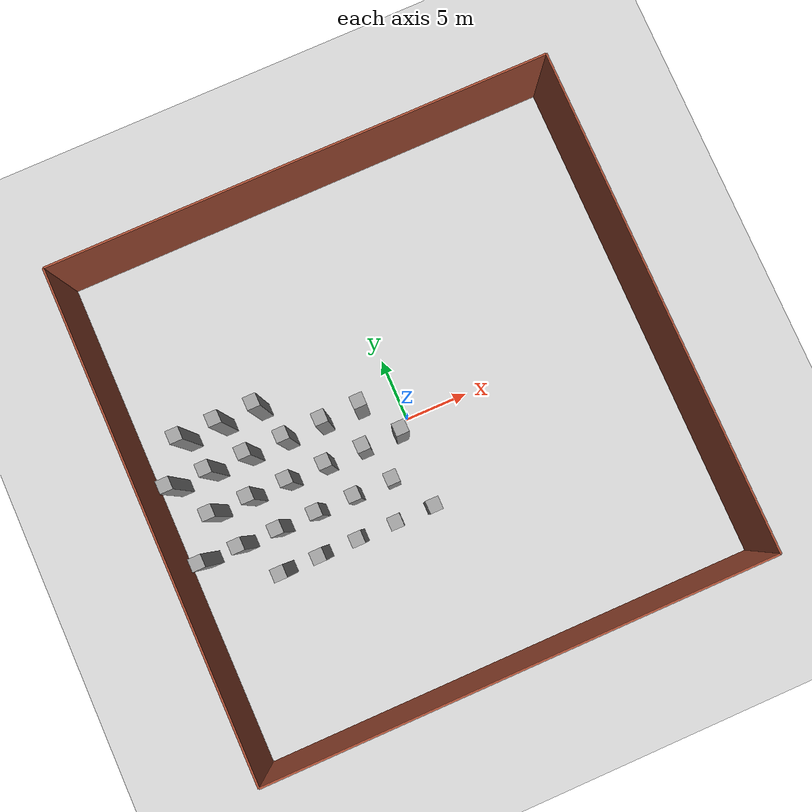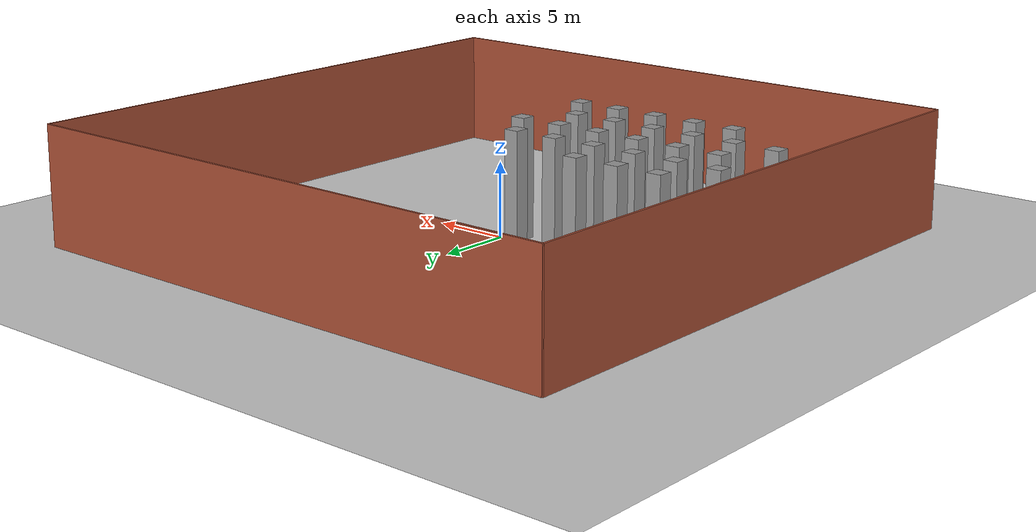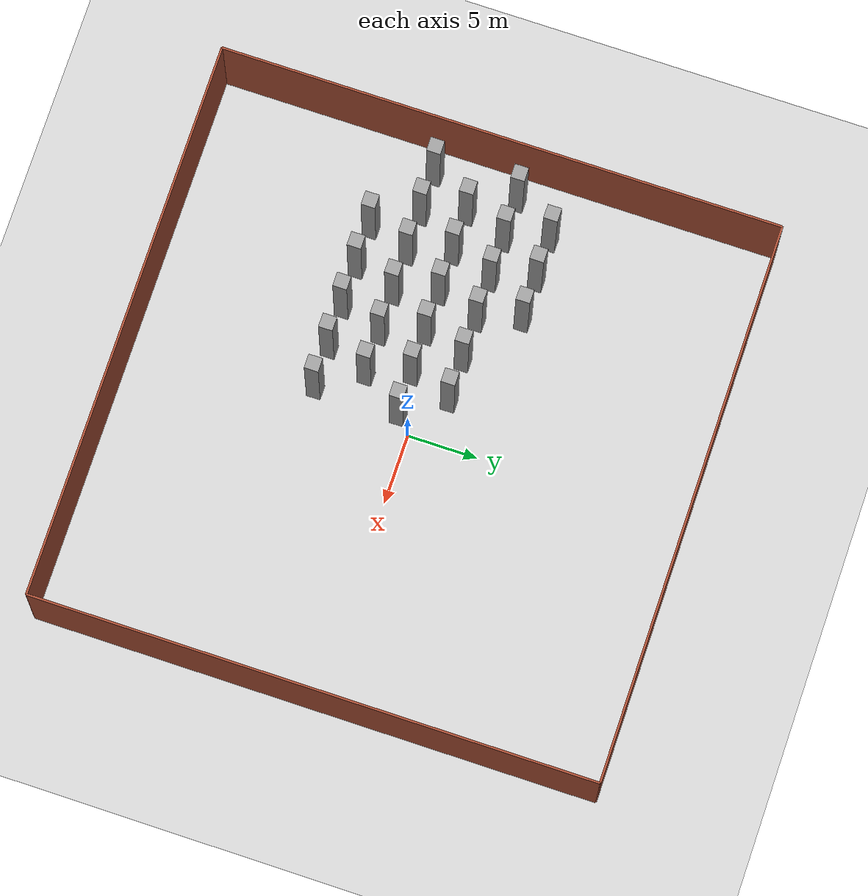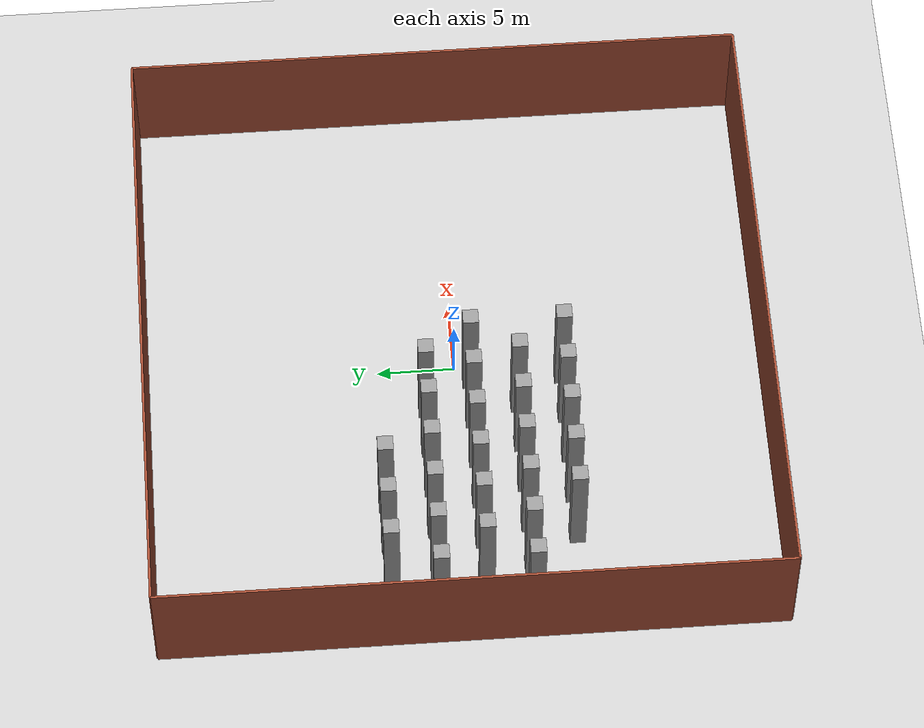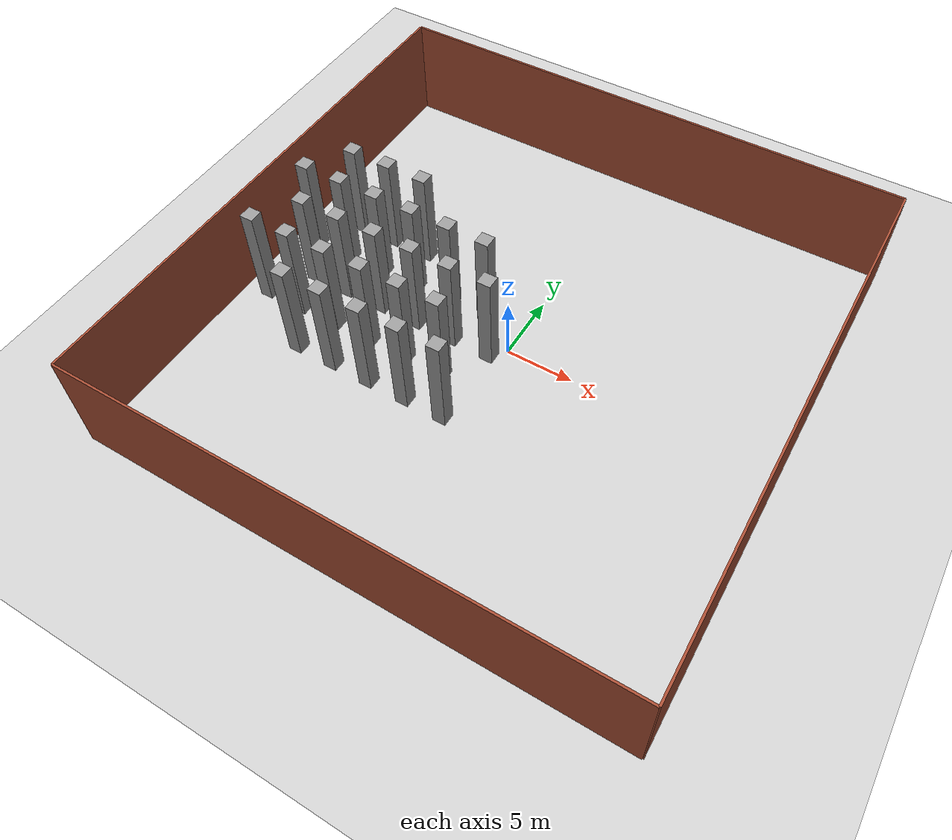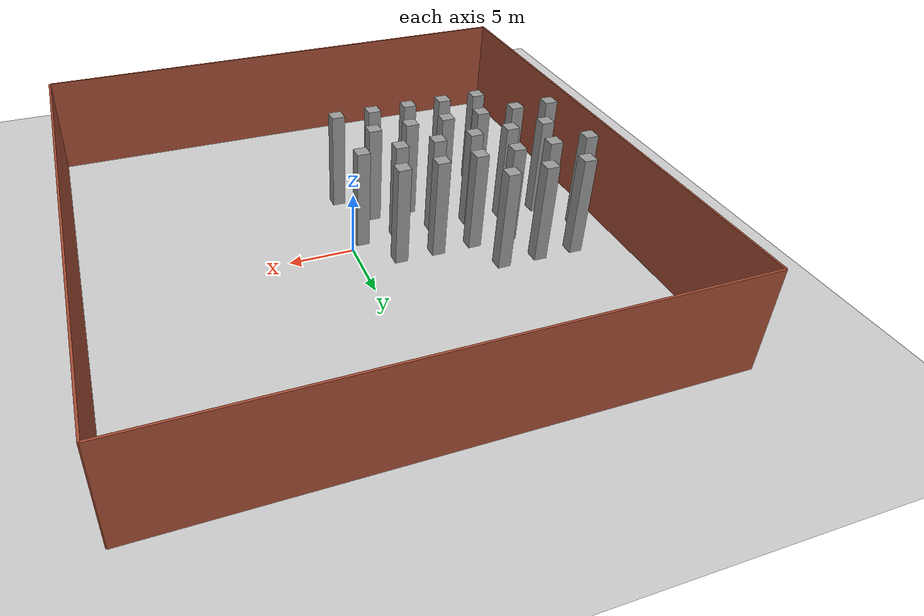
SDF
<sdf version="1.7">
 <world name="default">
  <model name="ground_plane">
   <static>1</static>
   <link name="link">
    <collision name="collision">
     <geometry><plane><normal>0 0 1</normal><size>100 100</size></plane></geometry>
     <surface>
      <contact><collide_bitmask>65535</collide_bitmask></contact>
      <friction><ode><mu>100</mu><mu2>50</mu2></ode></friction>
     </surface>
    </collision>
    <visual name="visual">
     <cast_shadows>0</cast_shadows>
     <geometry><plane><normal>0 0 1</normal><size>100 100</size></plane></geometry>
     <material>
      <script><uri>file://media/materials/scripts/gazebo.material</uri><name>Gazebo/Grey</name></script>
     </material>
    </visual>
   </link>
  </model>
  <model name="sim_room_square">
   <link name="Wall_14">
    <collision name="Wall_14_Collision">
     <geometry><box><size>40 0.15 8</size></box></geometry>
     <pose>0 0 4 0 -0 0</pose>
    </collision>
    <visual name="Wall_14_Visual">
     <pose>0 0 4 0 -0 0</pose>
     <geometry><box><size>40 0.15 8</size></box></geometry>
     <material>
      <script><uri>file://media/materials/scripts/gazebo.material</uri><name>Gazebo/Bricks</name></script>
      <ambient>1 1 1 1</ambient>
     </material>
     <meta><layer>0</layer></meta>
    </visual>
    <pose>20 -0 0 0 -0 -1.5708</pose>
   </link>
   <link name="Wall_15">
    <collision name="Wall_15_Collision">
     <geometry><box><size>40 0.15 8</size></box></geometry>
     <pose>0 0 4 0 -0 0</pose>
    </collision>
    <visual name="Wall_15_Visual">
     <pose>0 0 4 0 -0 0</pose>
     <geometry><box><size>40 0.15 8</size></box></geometry>
     <material>
      <script><uri>file://media/materials/scripts/gazebo.material</uri><name>Gazebo/Bricks</name></script>
      <ambient>1 1 1 1</ambient>
     </material>
     <meta><layer>0</layer></meta>
    </visual>
    <pose>0 -20 0 0 -0 3.14159</pose>
   </link>
   <link name="Wall_16">
    <collision name="Wall_16_Collision">
     <geometry><box><size>40 0.15 8</size></box></geometry>
     <pose>0 0 4 0 -0 0</pose>
    </collision>
    <visual name="Wall_16_Visual">
     <pose>0 0 4 0 -0 0</pose>
     <geometry><box><size>40 0.15 8</size></box></geometry>
     <material>
      <script><uri>file://media/materials/scripts/gazebo.material</uri><name>Gazebo/Bricks</name></script>
      <ambient>1 1 1 1</ambient>
     </material>
     <meta><layer>0</layer></meta>
    </visual>
    <pose>-20 -0 0 0 -0 1.5708</pose>
   </link>
   <link name="Wall_19">
    <collision name="Wall_19_Collision">
     <geometry><box><size>40 0.15 8</size></box></geometry>
     <pose>0 0 4 0 -0 0</pose>
    </collision>
    <visual name="Wall_19_Visual">
     <pose>0 0 4 0 -0 0</pose>
     <geometry><box><size>40 0.15 8</size></box></geometry>
     <material>
      <script><uri>file://media/materials/scripts/gazebo.material</uri><name>Gazebo/Bricks</name></script>
      <ambient>1 1 1 1</ambient>
     </material>
     <meta><layer>0</layer></meta>
    </visual>
    <pose>0 20 0 0 -0 0</pose>
   </link>
   <static>1</static>
  </model>
  <model name="unit_box_static52">
   <link name="link">
    <inertial>
     <mass>1</mass>
     <inertia>
      <ixx>0.166667</ixx>
      <ixy>0</ixy>
      <ixz>0</ixz>
      <iyy>0.166667</iyy>
      <iyz>0</iyz>
      <izz>0.166667</izz>
     </inertia>
    </inertial>
    <visual name="visual">
     <geometry><box><size>1 1 8</size></box></geometry>
     <material>
      <script><name>Gazebo/Grey</name><uri>file://media/materials/scripts/gazebo.material</uri></script>
      <shader type="pixel"/>
     </material>
    </visual>
    <collision name="collision">
     <geometry><box><size>1 1 8</size></box></geometry>
     <surface>
      <friction>
       <ode><mu>1</mu><mu2>1</mu2><fdir1>0 0 0</fdir1><slip1>0</slip1><slip2>0</slip2></ode>
       <torsional>
        <coefficient>1</coefficient>
        <patch_radius>0</patch_radius>
        <surface_radius>0</surface_radius>
        <use_patch_radius>1</use_patch_radius>
        <ode><slip>0</slip></ode>
       </torsional>
      </friction>
      <bounce><restitution_coefficient>0</restitution_coefficient><threshold>1e+06</threshold></bounce>
      <contact>
       <collide_without_contact>0</collide_without_contact>
       <collide_without_contact_bitmask>1</collide_without_contact_bitmask>
       <collide_bitmask>1</collide_bitmask>
       <ode>
        <soft_cfm>0</soft_cfm>
        <soft_erp>0.2</soft_erp>
        <kp>1e+13</kp>
        <kd>1</kd>
        <max_vel>0.01</max_vel>
        <min_depth>0</min_depth>
       </ode>
       <bullet>
        <split_impulse>1</split_impulse>
        <split_impulse_penetration_threshold>-0.01</split_impulse_penetration_threshold>
        <soft_cfm>0</soft_cfm>
        <soft_erp>0.2</soft_erp>
        <kp>1e+13</kp>
        <kd>1</kd>
       </bullet>
      </contact>
     </surface>
    </collision>
   </link>
   <static>1</static>
   <pose>-13 -7 4 0 -0 0</pose>
  </model>
  <model name="unit_box_static53">
   <link name="link">
    <inertial>
     <mass>1</mass>
     <inertia>
      <ixx>0.166667</ixx>
      <ixy>0</ixy>
      <ixz>0</ixz>
      <iyy>0.166667</iyy>
      <iyz>0</iyz>
      <izz>0.166667</izz>
     </inertia>
    </inertial>
    <visual name="visual">
     <geometry><box><size>1 1 8</size></box></geometry>
     <material>
      <script><name>Gazebo/Grey</name><uri>file://media/materials/scripts/gazebo.material</uri></script>
      <shader type="pixel"/>
     </material>
    </visual>
    <collision name="collision">
     <geometry><box><size>1 1 8</size></box></geometry>
     <surface>
      <friction>
       <ode><mu>1</mu><mu2>1</mu2><fdir1>0 0 0</fdir1><slip1>0</slip1><slip2>0</slip2></ode>
       <torsional>
        <coefficient>1</coefficient>
        <patch_radius>0</patch_radius>
        <surface_radius>0</surface_radius>
        <use_patch_radius>1</use_patch_radius>
        <ode><slip>0</slip></ode>
       </torsional>
      </friction>
      <bounce><restitution_coefficient>0</restitution_coefficient><threshold>1e+06</threshold></bounce>
      <contact>
       <collide_without_contact>0</collide_without_contact>
       <collide_without_contact_bitmask>1</collide_without_contact_bitmask>
       <collide_bitmask>1</collide_bitmask>
       <ode>
        <soft_cfm>0</soft_cfm>
        <soft_erp>0.2</soft_erp>
        <kp>1e+13</kp>
        <kd>1</kd>
        <max_vel>0.01</max_vel>
        <min_depth>0</min_depth>
       </ode>
       <bullet>
        <split_impulse>1</split_impulse>
        <split_impulse_penetration_threshold>-0.01</split_impulse_penetration_threshold>
        <soft_cfm>0</soft_cfm>
        <soft_erp>0.2</soft_erp>
        <kp>1e+13</kp>
        <kd>1</kd>
       </bullet>
      </contact>
     </surface>
    </collision>
   </link>
   <static>1</static>
   <pose>-10 -7 4 0 -0 0</pose>
  </model>
  <model name="unit_box_static54">
   <link name="link">
    <inertial>
     <mass>1</mass>
     <inertia>
      <ixx>0.166667</ixx>
      <ixy>0</ixy>
      <ixz>0</ixz>
      <iyy>0.166667</iyy>
      <iyz>0</iyz>
      <izz>0.166667</izz>
     </inertia>
    </inertial>
    <visual name="visual">
     <geometry><box><size>1 1 8</size></box></geometry>
     <material>
      <script><name>Gazebo/Grey</name><uri>file://media/materials/scripts/gazebo.material</uri></script>
      <shader type="pixel"/>
     </material>
    </visual>
    <collision name="collision">
     <geometry><box><size>1 1 8</size></box></geometry>
     <surface>
      <friction>
       <ode><mu>1</mu><mu2>1</mu2><fdir1>0 0 0</fdir1><slip1>0</slip1><slip2>0</slip2></ode>
       <torsional>
        <coefficient>1</coefficient>
        <patch_radius>0</patch_radius>
        <surface_radius>0</surface_radius>
        <use_patch_radius>1</use_patch_radius>
        <ode><slip>0</slip></ode>
       </torsional>
      </friction>
      <bounce><restitution_coefficient>0</restitution_coefficient><threshold>1e+06</threshold></bounce>
      <contact>
       <collide_without_contact>0</collide_without_contact>
       <collide_without_contact_bitmask>1</collide_without_contact_bitmask>
       <collide_bitmask>1</collide_bitmask>
       <ode>
        <soft_cfm>0</soft_cfm>
        <soft_erp>0.2</soft_erp>
        <kp>1e+13</kp>
        <kd>1</kd>
        <max_vel>0.01</max_vel>
        <min_depth>0</min_depth>
       </ode>
       <bullet>
        <split_impulse>1</split_impulse>
        <split_impulse_penetration_threshold>-0.01</split_impulse_penetration_threshold>
        <soft_cfm>0</soft_cfm>
        <soft_erp>0.2</soft_erp>
        <kp>1e+13</kp>
        <kd>1</kd>
       </bullet>
      </contact>
     </surface>
    </collision>
   </link>
   <static>1</static>
   <pose>-7 -7 4 0 -0 0</pose>
  </model>
  <model name="unit_box_static55">
   <link name="link">
    <inertial>
     <mass>1</mass>
     <inertia>
      <ixx>0.166667</ixx>
      <ixy>0</ixy>
      <ixz>0</ixz>
      <iyy>0.166667</iyy>
      <iyz>0</iyz>
      <izz>0.166667</izz>
     </inertia>
    </inertial>
    <visual name="visual">
     <geometry><box><size>1 1 8</size></box></geometry>
     <material>
      <script><name>Gazebo/Grey</name><uri>file://media/materials/scripts/gazebo.material</uri></script>
      <shader type="pixel"/>
     </material>
    </visual>
    <collision name="collision">
     <geometry><box><size>1 1 8</size></box></geometry>
     <surface>
      <friction>
       <ode><mu>1</mu><mu2>1</mu2><fdir1>0 0 0</fdir1><slip1>0</slip1><slip2>0</slip2></ode>
       <torsional>
        <coefficient>1</coefficient>
        <patch_radius>0</patch_radius>
        <surface_radius>0</surface_radius>
        <use_patch_radius>1</use_patch_radius>
        <ode><slip>0</slip></ode>
       </torsional>
      </friction>
      <bounce><restitution_coefficient>0</restitution_coefficient><threshold>1e+06</threshold></bounce>
      <contact>
       <collide_without_contact>0</collide_without_contact>
       <collide_without_contact_bitmask>1</collide_without_contact_bitmask>
       <collide_bitmask>1</collide_bitmask>
       <ode>
        <soft_cfm>0</soft_cfm>
        <soft_erp>0.2</soft_erp>
        <kp>1e+13</kp>
        <kd>1</kd>
        <max_vel>0.01</max_vel>
        <min_depth>0</min_depth>
       </ode>
       <bullet>
        <split_impulse>1</split_impulse>
        <split_impulse_penetration_threshold>-0.01</split_impulse_penetration_threshold>
        <soft_cfm>0</soft_cfm>
        <soft_erp>0.2</soft_erp>
        <kp>1e+13</kp>
        <kd>1</kd>
       </bullet>
      </contact>
     </surface>
    </collision>
   </link>
   <static>1</static>
   <pose>-4 -7 4 0 -0 0</pose>
  </model>
  <model name="unit_box_static56">
   <link name="link">
    <inertial>
     <mass>1</mass>
     <inertia>
      <ixx>0.166667</ixx>
      <ixy>0</ixy>
      <ixz>0</ixz>
      <iyy>0.166667</iyy>
      <iyz>0</iyz>
      <izz>0.166667</izz>
     </inertia>
    </inertial>
    <visual name="visual">
     <geometry><box><size>1 1 8</size></box></geometry>
     <material>
      <script><name>Gazebo/Grey</name><uri>file://media/materials/scripts/gazebo.material</uri></script>
      <shader type="pixel"/>
     </material>
    </visual>
    <collision name="collision">
     <geometry><box><size>1 1 8</size></box></geometry>
     <surface>
      <friction>
       <ode><mu>1</mu><mu2>1</mu2><fdir1>0 0 0</fdir1><slip1>0</slip1><slip2>0</slip2></ode>
       <torsional>
        <coefficient>1</coefficient>
        <patch_radius>0</patch_radius>
        <surface_radius>0</surface_radius>
        <use_patch_radius>1</use_patch_radius>
        <ode><slip>0</slip></ode>
       </torsional>
      </friction>
      <bounce><restitution_coefficient>0</restitution_coefficient><threshold>1e+06</threshold></bounce>
      <contact>
       <collide_without_contact>0</collide_without_contact>
       <collide_without_contact_bitmask>1</collide_without_contact_bitmask>
       <collide_bitmask>1</collide_bitmask>
       <ode>
        <soft_cfm>0</soft_cfm>
        <soft_erp>0.2</soft_erp>
        <kp>1e+13</kp>
        <kd>1</kd>
        <max_vel>0.01</max_vel>
        <min_depth>0</min_depth>
       </ode>
       <bullet>
        <split_impulse>1</split_impulse>
        <split_impulse_penetration_threshold>-0.01</split_impulse_penetration_threshold>
        <soft_cfm>0</soft_cfm>
        <soft_erp>0.2</soft_erp>
        <kp>1e+13</kp>
        <kd>1</kd>
       </bullet>
      </contact>
     </surface>
    </collision>
   </link>
   <static>1</static>
   <pose>-1 -7 4 0 -0 0</pose>
  </model>
  <model name="unit_box_static63">
   <link name="link">
    <inertial>
     <mass>1</mass>
     <inertia>
      <ixx>0.166667</ixx>
      <ixy>0</ixy>
      <ixz>0</ixz>
      <iyy>0.166667</iyy>
      <iyz>0</iyz>
      <izz>0.166667</izz>
     </inertia>
    </inertial>
    <visual name="visual">
     <geometry><box><size>1 1 8</size></box></geometry>
     <material>
      <script><name>Gazebo/Grey</name><uri>file://media/materials/scripts/gazebo.material</uri></script>
      <shader type="pixel"/>
     </material>
    </visual>
    <collision name="collision">
     <geometry><box><size>1 1 8</size></box></geometry>
     <surface>
      <friction>
       <ode><mu>1</mu><mu2>1</mu2><fdir1>0 0 0</fdir1><slip1>0</slip1><slip2>0</slip2></ode>
       <torsional>
        <coefficient>1</coefficient>
        <patch_radius>0</patch_radius>
        <surface_radius>0</surface_radius>
        <use_patch_radius>1</use_patch_radius>
        <ode><slip>0</slip></ode>
       </torsional>
      </friction>
      <bounce><restitution_coefficient>0</restitution_coefficient><threshold>1e+06</threshold></bounce>
      <contact>
       <collide_without_contact>0</collide_without_contact>
       <collide_without_contact_bitmask>1</collide_without_contact_bitmask>
       <collide_bitmask>1</collide_bitmask>
       <ode>
        <soft_cfm>0</soft_cfm>
        <soft_erp>0.2</soft_erp>
        <kp>1e+13</kp>
        <kd>1</kd>
        <max_vel>0.01</max_vel>
        <min_depth>0</min_depth>
       </ode>
       <bullet>
        <split_impulse>1</split_impulse>
        <split_impulse_penetration_threshold>-0.01</split_impulse_penetration_threshold>
        <soft_cfm>0</soft_cfm>
        <soft_erp>0.2</soft_erp>
        <kp>1e+13</kp>
        <kd>1</kd>
       </bullet>
      </contact>
     </surface>
    </collision>
   </link>
   <static>1</static>
   <pose>-18 -4 4 0 -0 0</pose>
  </model>
  <model name="unit_box_static64">
   <link name="link">
    <inertial>
     <mass>1</mass>
     <inertia>
      <ixx>0.166667</ixx>
      <ixy>0</ixy>
      <ixz>0</ixz>
      <iyy>0.166667</iyy>
      <iyz>0</iyz>
      <izz>0.166667</izz>
     </inertia>
    </inertial>
    <visual name="visual">
     <geometry><box><size>1 1 8</size></box></geometry>
     <material>
      <script><name>Gazebo/Grey</name><uri>file://media/materials/scripts/gazebo.material</uri></script>
      <shader type="pixel"/>
     </material>
    </visual>
    <collision name="collision">
     <geometry><box><size>1 1 8</size></box></geometry>
     <surface>
      <friction>
       <ode><mu>1</mu><mu2>1</mu2><fdir1>0 0 0</fdir1><slip1>0</slip1><slip2>0</slip2></ode>
       <torsional>
        <coefficient>1</coefficient>
        <patch_radius>0</patch_radius>
        <surface_radius>0</surface_radius>
        <use_patch_radius>1</use_patch_radius>
        <ode><slip>0</slip></ode>
       </torsional>
      </friction>
      <bounce><restitution_coefficient>0</restitution_coefficient><threshold>1e+06</threshold></bounce>
      <contact>
       <collide_without_contact>0</collide_without_contact>
       <collide_without_contact_bitmask>1</collide_without_contact_bitmask>
       <collide_bitmask>1</collide_bitmask>
       <ode>
        <soft_cfm>0</soft_cfm>
        <soft_erp>0.2</soft_erp>
        <kp>1e+13</kp>
        <kd>1</kd>
        <max_vel>0.01</max_vel>
        <min_depth>0</min_depth>
       </ode>
       <bullet>
        <split_impulse>1</split_impulse>
        <split_impulse_penetration_threshold>-0.01</split_impulse_penetration_threshold>
        <soft_cfm>0</soft_cfm>
        <soft_erp>0.2</soft_erp>
        <kp>1e+13</kp>
        <kd>1</kd>
       </bullet>
      </contact>
     </surface>
    </collision>
   </link>
   <static>1</static>
   <pose>-15 -4 4 0 -0 0</pose>
  </model>
  <model name="unit_box_static65">
   <link name="link">
    <inertial>
     <mass>1</mass>
     <inertia>
      <ixx>0.166667</ixx>
      <ixy>0</ixy>
      <ixz>0</ixz>
      <iyy>0.166667</iyy>
      <iyz>0</iyz>
      <izz>0.166667</izz>
     </inertia>
    </inertial>
    <visual name="visual">
     <geometry><box><size>1 1 8</size></box></geometry>
     <material>
      <script><name>Gazebo/Grey</name><uri>file://media/materials/scripts/gazebo.material</uri></script>
      <shader type="pixel"/>
     </material>
    </visual>
    <collision name="collision">
     <geometry><box><size>1 1 8</size></box></geometry>
     <surface>
      <friction>
       <ode><mu>1</mu><mu2>1</mu2><fdir1>0 0 0</fdir1><slip1>0</slip1><slip2>0</slip2></ode>
       <torsional>
        <coefficient>1</coefficient>
        <patch_radius>0</patch_radius>
        <surface_radius>0</surface_radius>
        <use_patch_radius>1</use_patch_radius>
        <ode><slip>0</slip></ode>
       </torsional>
      </friction>
      <bounce><restitution_coefficient>0</restitution_coefficient><threshold>1e+06</threshold></bounce>
      <contact>
       <collide_without_contact>0</collide_without_contact>
       <collide_without_contact_bitmask>1</collide_without_contact_bitmask>
       <collide_bitmask>1</collide_bitmask>
       <ode>
        <soft_cfm>0</soft_cfm>
        <soft_erp>0.2</soft_erp>
        <kp>1e+13</kp>
        <kd>1</kd>
        <max_vel>0.01</max_vel>
        <min_depth>0</min_depth>
       </ode>
       <bullet>
        <split_impulse>1</split_impulse>
        <split_impulse_penetration_threshold>-0.01</split_impulse_penetration_threshold>
        <soft_cfm>0</soft_cfm>
        <soft_erp>0.2</soft_erp>
        <kp>1e+13</kp>
        <kd>1</kd>
       </bullet>
      </contact>
     </surface>
    </collision>
   </link>
   <static>1</static>
   <pose>-12 -4 4 0 -0 0</pose>
  </model>
  <model name="unit_box_static66">
   <link name="link">
    <inertial>
     <mass>1</mass>
     <inertia>
      <ixx>0.166667</ixx>
      <ixy>0</ixy>
      <ixz>0</ixz>
      <iyy>0.166667</iyy>
      <iyz>0</iyz>
      <izz>0.166667</izz>
     </inertia>
    </inertial>
    <visual name="visual">
     <geometry><box><size>1 1 8</size></box></geometry>
     <material>
      <script><name>Gazebo/Grey</name><uri>file://media/materials/scripts/gazebo.material</uri></script>
      <shader type="pixel"/>
     </material>
    </visual>
    <collision name="collision">
     <geometry><box><size>1 1 8</size></box></geometry>
     <surface>
      <friction>
       <ode><mu>1</mu><mu2>1</mu2><fdir1>0 0 0</fdir1><slip1>0</slip1><slip2>0</slip2></ode>
       <torsional>
        <coefficient>1</coefficient>
        <patch_radius>0</patch_radius>
        <surface_radius>0</surface_radius>
        <use_patch_radius>1</use_patch_radius>
        <ode><slip>0</slip></ode>
       </torsional>
      </friction>
      <bounce><restitution_coefficient>0</restitution_coefficient><threshold>1e+06</threshold></bounce>
      <contact>
       <collide_without_contact>0</collide_without_contact>
       <collide_without_contact_bitmask>1</collide_without_contact_bitmask>
       <collide_bitmask>1</collide_bitmask>
       <ode>
        <soft_cfm>0</soft_cfm>
        <soft_erp>0.2</soft_erp>
        <kp>1e+13</kp>
        <kd>1</kd>
        <max_vel>0.01</max_vel>
        <min_depth>0</min_depth>
       </ode>
       <bullet>
        <split_impulse>1</split_impulse>
        <split_impulse_penetration_threshold>-0.01</split_impulse_penetration_threshold>
        <soft_cfm>0</soft_cfm>
        <soft_erp>0.2</soft_erp>
        <kp>1e+13</kp>
        <kd>1</kd>
       </bullet>
      </contact>
     </surface>
    </collision>
   </link>
   <static>1</static>
   <pose>-9 -4 4 0 -0 0</pose>
  </model>
  <model name="unit_box_static67">
   <link name="link">
    <inertial>
     <mass>1</mass>
     <inertia>
      <ixx>0.166667</ixx>
      <ixy>0</ixy>
      <ixz>0</ixz>
      <iyy>0.166667</iyy>
      <iyz>0</iyz>
      <izz>0.166667</izz>
     </inertia>
    </inertial>
    <visual name="visual">
     <geometry><box><size>1 1 8</size></box></geometry>
     <material>
      <script><name>Gazebo/Grey</name><uri>file://media/materials/scripts/gazebo.material</uri></script>
      <shader type="pixel"/>
     </material>
    </visual>
    <collision name="collision">
     <geometry><box><size>1 1 8</size></box></geometry>
     <surface>
      <friction>
       <ode><mu>1</mu><mu2>1</mu2><fdir1>0 0 0</fdir1><slip1>0</slip1><slip2>0</slip2></ode>
       <torsional>
        <coefficient>1</coefficient>
        <patch_radius>0</patch_radius>
        <surface_radius>0</surface_radius>
        <use_patch_radius>1</use_patch_radius>
        <ode><slip>0</slip></ode>
       </torsional>
      </friction>
      <bounce><restitution_coefficient>0</restitution_coefficient><threshold>1e+06</threshold></bounce>
      <contact>
       <collide_without_contact>0</collide_without_contact>
       <collide_without_contact_bitmask>1</collide_without_contact_bitmask>
       <collide_bitmask>1</collide_bitmask>
       <ode>
        <soft_cfm>0</soft_cfm>
        <soft_erp>0.2</soft_erp>
        <kp>1e+13</kp>
        <kd>1</kd>
        <max_vel>0.01</max_vel>
        <min_depth>0</min_depth>
       </ode>
       <bullet>
        <split_impulse>1</split_impulse>
        <split_impulse_penetration_threshold>-0.01</split_impulse_penetration_threshold>
        <soft_cfm>0</soft_cfm>
        <soft_erp>0.2</soft_erp>
        <kp>1e+13</kp>
        <kd>1</kd>
       </bullet>
      </contact>
     </surface>
    </collision>
   </link>
   <static>1</static>
   <pose>-6 -4 4 0 -0 0</pose>
  </model>
  <model name="unit_box_static68">
   <link name="link">
    <inertial>
     <mass>1</mass>
     <inertia>
      <ixx>0.166667</ixx>
      <ixy>0</ixy>
      <ixz>0</ixz>
      <iyy>0.166667</iyy>
      <iyz>0</iyz>
      <izz>0.166667</izz>
     </inertia>
    </inertial>
    <visual name="visual">
     <geometry><box><size>1 1 8</size></box></geometry>
     <material>
      <script><name>Gazebo/Grey</name><uri>file://media/materials/scripts/gazebo.material</uri></script>
      <shader type="pixel"/>
     </material>
    </visual>
    <collision name="collision">
     <geometry><box><size>1 1 8</size></box></geometry>
     <surface>
      <friction>
       <ode><mu>1</mu><mu2>1</mu2><fdir1>0 0 0</fdir1><slip1>0</slip1><slip2>0</slip2></ode>
       <torsional>
        <coefficient>1</coefficient>
        <patch_radius>0</patch_radius>
        <surface_radius>0</surface_radius>
        <use_patch_radius>1</use_patch_radius>
        <ode><slip>0</slip></ode>
       </torsional>
      </friction>
      <bounce><restitution_coefficient>0</restitution_coefficient><threshold>1e+06</threshold></bounce>
      <contact>
       <collide_without_contact>0</collide_without_contact>
       <collide_without_contact_bitmask>1</collide_without_contact_bitmask>
       <collide_bitmask>1</collide_bitmask>
       <ode>
        <soft_cfm>0</soft_cfm>
        <soft_erp>0.2</soft_erp>
        <kp>1e+13</kp>
        <kd>1</kd>
        <max_vel>0.01</max_vel>
        <min_depth>0</min_depth>
       </ode>
       <bullet>
        <split_impulse>1</split_impulse>
        <split_impulse_penetration_threshold>-0.01</split_impulse_penetration_threshold>
        <soft_cfm>0</soft_cfm>
        <soft_erp>0.2</soft_erp>
        <kp>1e+13</kp>
        <kd>1</kd>
       </bullet>
      </contact>
     </surface>
    </collision>
   </link>
   <static>1</static>
   <pose>-3 -4 4 0 -0 0</pose>
  </model>
  <model name="unit_box_static76">
   <link name="link">
    <inertial>
     <mass>1</mass>
     <inertia>
      <ixx>0.166667</ixx>
      <ixy>0</ixy>
      <ixz>0</ixz>
      <iyy>0.166667</iyy>
      <iyz>0</iyz>
      <izz>0.166667</izz>
     </inertia>
    </inertial>
    <visual name="visual">
     <geometry><box><size>1 1 8</size></box></geometry>
     <material>
      <script><name>Gazebo/Grey</name><uri>file://media/materials/scripts/gazebo.material</uri></script>
      <shader type="pixel"/>
     </material>
    </visual>
    <collision name="collision">
     <geometry><box><size>1 1 8</size></box></geometry>
     <surface>
      <friction>
       <ode><mu>1</mu><mu2>1</mu2><fdir1>0 0 0</fdir1><slip1>0</slip1><slip2>0</slip2></ode>
       <torsional>
        <coefficient>1</coefficient>
        <patch_radius>0</patch_radius>
        <surface_radius>0</surface_radius>
        <use_patch_radius>1</use_patch_radius>
        <ode><slip>0</slip></ode>
       </torsional>
      </friction>
      <bounce><restitution_coefficient>0</restitution_coefficient><threshold>1e+06</threshold></bounce>
      <contact>
       <collide_without_contact>0</collide_without_contact>
       <collide_without_contact_bitmask>1</collide_without_contact_bitmask>
       <collide_bitmask>1</collide_bitmask>
       <ode>
        <soft_cfm>0</soft_cfm>
        <soft_erp>0.2</soft_erp>
        <kp>1e+13</kp>
        <kd>1</kd>
        <max_vel>0.01</max_vel>
        <min_depth>0</min_depth>
       </ode>
       <bullet>
        <split_impulse>1</split_impulse>
        <split_impulse_penetration_threshold>-0.01</split_impulse_penetration_threshold>
        <soft_cfm>0</soft_cfm>
        <soft_erp>0.2</soft_erp>
        <kp>1e+13</kp>
        <kd>1</kd>
       </bullet>
      </contact>
     </surface>
    </collision>
   </link>
   <static>1</static>
   <pose>-16 -1 4 0 -0 0</pose>
  </model>
  <model name="unit_box_static77">
   <link name="link">
    <inertial>
     <mass>1</mass>
     <inertia>
      <ixx>0.166667</ixx>
      <ixy>0</ixy>
      <ixz>0</ixz>
      <iyy>0.166667</iyy>
      <iyz>0</iyz>
      <izz>0.166667</izz>
     </inertia>
    </inertial>
    <visual name="visual">
     <geometry><box><size>1 1 8</size></box></geometry>
     <material>
      <script><name>Gazebo/Grey</name><uri>file://media/materials/scripts/gazebo.material</uri></script>
      <shader type="pixel"/>
     </material>
    </visual>
    <collision name="collision">
     <geometry><box><size>1 1 8</size></box></geometry>
     <surface>
      <friction>
       <ode><mu>1</mu><mu2>1</mu2><fdir1>0 0 0</fdir1><slip1>0</slip1><slip2>0</slip2></ode>
       <torsional>
        <coefficient>1</coefficient>
        <patch_radius>0</patch_radius>
        <surface_radius>0</surface_radius>
        <use_patch_radius>1</use_patch_radius>
        <ode><slip>0</slip></ode>
       </torsional>
      </friction>
      <bounce><restitution_coefficient>0</restitution_coefficient><threshold>1e+06</threshold></bounce>
      <contact>
       <collide_without_contact>0</collide_without_contact>
       <collide_without_contact_bitmask>1</collide_without_contact_bitmask>
       <collide_bitmask>1</collide_bitmask>
       <ode>
        <soft_cfm>0</soft_cfm>
        <soft_erp>0.2</soft_erp>
        <kp>1e+13</kp>
        <kd>1</kd>
        <max_vel>0.01</max_vel>
        <min_depth>0</min_depth>
       </ode>
       <bullet>
        <split_impulse>1</split_impulse>
        <split_impulse_penetration_threshold>-0.01</split_impulse_penetration_threshold>
        <soft_cfm>0</soft_cfm>
        <soft_erp>0.2</soft_erp>
        <kp>1e+13</kp>
        <kd>1</kd>
       </bullet>
      </contact>
     </surface>
    </collision>
   </link>
   <static>1</static>
   <pose>-13 -1 4 0 -0 0</pose>
  </model>
  <model name="unit_box_static78">
   <link name="link">
    <inertial>
     <mass>1</mass>
     <inertia>
      <ixx>0.166667</ixx>
      <ixy>0</ixy>
      <ixz>0</ixz>
      <iyy>0.166667</iyy>
      <iyz>0</iyz>
      <izz>0.166667</izz>
     </inertia>
    </inertial>
    <visual name="visual">
     <geometry><box><size>1 1 8</size></box></geometry>
     <material>
      <script><name>Gazebo/Grey</name><uri>file://media/materials/scripts/gazebo.material</uri></script>
      <shader type="pixel"/>
     </material>
    </visual>
    <collision name="collision">
     <geometry><box><size>1 1 8</size></box></geometry>
     <surface>
      <friction>
       <ode><mu>1</mu><mu2>1</mu2><fdir1>0 0 0</fdir1><slip1>0</slip1><slip2>0</slip2></ode>
       <torsional>
        <coefficient>1</coefficient>
        <patch_radius>0</patch_radius>
        <surface_radius>0</surface_radius>
        <use_patch_radius>1</use_patch_radius>
        <ode><slip>0</slip></ode>
       </torsional>
      </friction>
      <bounce><restitution_coefficient>0</restitution_coefficient><threshold>1e+06</threshold></bounce>
      <contact>
       <collide_without_contact>0</collide_without_contact>
       <collide_without_contact_bitmask>1</collide_without_contact_bitmask>
       <collide_bitmask>1</collide_bitmask>
       <ode>
        <soft_cfm>0</soft_cfm>
        <soft_erp>0.2</soft_erp>
        <kp>1e+13</kp>
        <kd>1</kd>
        <max_vel>0.01</max_vel>
        <min_depth>0</min_depth>
       </ode>
       <bullet>
        <split_impulse>1</split_impulse>
        <split_impulse_penetration_threshold>-0.01</split_impulse_penetration_threshold>
        <soft_cfm>0</soft_cfm>
        <soft_erp>0.2</soft_erp>
        <kp>1e+13</kp>
        <kd>1</kd>
       </bullet>
      </contact>
     </surface>
    </collision>
   </link>
   <static>1</static>
   <pose>-10 -1 4 0 -0 0</pose>
  </model>
  <model name="unit_box_static79">
   <link name="link">
    <inertial>
     <mass>1</mass>
     <inertia>
      <ixx>0.166667</ixx>
      <ixy>0</ixy>
      <ixz>0</ixz>
      <iyy>0.166667</iyy>
      <iyz>0</iyz>
      <izz>0.166667</izz>
     </inertia>
    </inertial>
    <visual name="visual">
     <geometry><box><size>1 1 8</size></box></geometry>
     <material>
      <script><name>Gazebo/Grey</name><uri>file://media/materials/scripts/gazebo.material</uri></script>
      <shader type="pixel"/>
     </material>
    </visual>
    <collision name="collision">
     <geometry><box><size>1 1 8</size></box></geometry>
     <surface>
      <friction>
       <ode><mu>1</mu><mu2>1</mu2><fdir1>0 0 0</fdir1><slip1>0</slip1><slip2>0</slip2></ode>
       <torsional>
        <coefficient>1</coefficient>
        <patch_radius>0</patch_radius>
        <surface_radius>0</surface_radius>
        <use_patch_radius>1</use_patch_radius>
        <ode><slip>0</slip></ode>
       </torsional>
      </friction>
      <bounce><restitution_coefficient>0</restitution_coefficient><threshold>1e+06</threshold></bounce>
      <contact>
       <collide_without_contact>0</collide_without_contact>
       <collide_without_contact_bitmask>1</collide_without_contact_bitmask>
       <collide_bitmask>1</collide_bitmask>
       <ode>
        <soft_cfm>0</soft_cfm>
        <soft_erp>0.2</soft_erp>
        <kp>1e+13</kp>
        <kd>1</kd>
        <max_vel>0.01</max_vel>
        <min_depth>0</min_depth>
       </ode>
       <bullet>
        <split_impulse>1</split_impulse>
        <split_impulse_penetration_threshold>-0.01</split_impulse_penetration_threshold>
        <soft_cfm>0</soft_cfm>
        <soft_erp>0.2</soft_erp>
        <kp>1e+13</kp>
        <kd>1</kd>
       </bullet>
      </contact>
     </surface>
    </collision>
   </link>
   <static>1</static>
   <pose>-7 -1 4 0 -0 0</pose>
  </model>
  <model name="unit_box_static80">
   <link name="link">
    <inertial>
     <mass>1</mass>
     <inertia>
      <ixx>0.166667</ixx>
      <ixy>0</ixy>
      <ixz>0</ixz>
      <iyy>0.166667</iyy>
      <iyz>0</iyz>
      <izz>0.166667</izz>
     </inertia>
    </inertial>
    <visual name="visual">
     <geometry><box><size>1 1 8</size></box></geometry>
     <material>
      <script><name>Gazebo/Grey</name><uri>file://media/materials/scripts/gazebo.material</uri></script>
      <shader type="pixel"/>
     </material>
    </visual>
    <collision name="collision">
     <geometry><box><size>1 1 8</size></box></geometry>
     <surface>
      <friction>
       <ode><mu>1</mu><mu2>1</mu2><fdir1>0 0 0</fdir1><slip1>0</slip1><slip2>0</slip2></ode>
       <torsional>
        <coefficient>1</coefficient>
        <patch_radius>0</patch_radius>
        <surface_radius>0</surface_radius>
        <use_patch_radius>1</use_patch_radius>
        <ode><slip>0</slip></ode>
       </torsional>
      </friction>
      <bounce><restitution_coefficient>0</restitution_coefficient><threshold>1e+06</threshold></bounce>
      <contact>
       <collide_without_contact>0</collide_without_contact>
       <collide_without_contact_bitmask>1</collide_without_contact_bitmask>
       <collide_bitmask>1</collide_bitmask>
       <ode>
        <soft_cfm>0</soft_cfm>
        <soft_erp>0.2</soft_erp>
        <kp>1e+13</kp>
        <kd>1</kd>
        <max_vel>0.01</max_vel>
        <min_depth>0</min_depth>
       </ode>
       <bullet>
        <split_impulse>1</split_impulse>
        <split_impulse_penetration_threshold>-0.01</split_impulse_penetration_threshold>
        <soft_cfm>0</soft_cfm>
        <soft_erp>0.2</soft_erp>
        <kp>1e+13</kp>
        <kd>1</kd>
       </bullet>
      </contact>
     </surface>
    </collision>
   </link>
   <static>1</static>
   <pose>-4 -1 4 0 -0 0</pose>
  </model>
  <model name="unit_box_static81">
   <link name="link">
    <inertial>
     <mass>1</mass>
     <inertia>
      <ixx>0.166667</ixx>
      <ixy>0</ixy>
      <ixz>0</ixz>
      <iyy>0.166667</iyy>
      <iyz>0</iyz>
      <izz>0.166667</izz>
     </inertia>
    </inertial>
    <visual name="visual">
     <geometry><box><size>1 1 8</size></box></geometry>
     <material>
      <script><name>Gazebo/Grey</name><uri>file://media/materials/scripts/gazebo.material</uri></script>
      <shader type="pixel"/>
     </material>
    </visual>
    <collision name="collision">
     <geometry><box><size>1 1 8</size></box></geometry>
     <surface>
      <friction>
       <ode><mu>1</mu><mu2>1</mu2><fdir1>0 0 0</fdir1><slip1>0</slip1><slip2>0</slip2></ode>
       <torsional>
        <coefficient>1</coefficient>
        <patch_radius>0</patch_radius>
        <surface_radius>0</surface_radius>
        <use_patch_radius>1</use_patch_radius>
        <ode><slip>0</slip></ode>
       </torsional>
      </friction>
      <bounce><restitution_coefficient>0</restitution_coefficient><threshold>1e+06</threshold></bounce>
      <contact>
       <collide_without_contact>0</collide_without_contact>
       <collide_without_contact_bitmask>1</collide_without_contact_bitmask>
       <collide_bitmask>1</collide_bitmask>
       <ode>
        <soft_cfm>0</soft_cfm>
        <soft_erp>0.2</soft_erp>
        <kp>1e+13</kp>
        <kd>1</kd>
        <max_vel>0.01</max_vel>
        <min_depth>0</min_depth>
       </ode>
       <bullet>
        <split_impulse>1</split_impulse>
        <split_impulse_penetration_threshold>-0.01</split_impulse_penetration_threshold>
        <soft_cfm>0</soft_cfm>
        <soft_erp>0.2</soft_erp>
        <kp>1e+13</kp>
        <kd>1</kd>
       </bullet>
      </contact>
     </surface>
    </collision>
   </link>
   <static>1</static>
   <pose>-1 -1 4 0 -0 0</pose>
  </model>
  <model name="unit_box_static88">
   <link name="link">
    <inertial>
     <mass>1</mass>
     <inertia>
      <ixx>0.166667</ixx>
      <ixy>0</ixy>
      <ixz>0</ixz>
      <iyy>0.166667</iyy>
      <iyz>0</iyz>
      <izz>0.166667</izz>
     </inertia>
    </inertial>
    <visual name="visual">
     <geometry><box><size>1 1 8</size></box></geometry>
     <material>
      <script><name>Gazebo/Grey</name><uri>file://media/materials/scripts/gazebo.material</uri></script>
      <shader type="pixel"/>
     </material>
    </visual>
    <collision name="collision">
     <geometry><box><size>1 1 8</size></box></geometry>
     <surface>
      <friction>
       <ode><mu>1</mu><mu2>1</mu2><fdir1>0 0 0</fdir1><slip1>0</slip1><slip2>0</slip2></ode>
       <torsional>
        <coefficient>1</coefficient>
        <patch_radius>0</patch_radius>
        <surface_radius>0</surface_radius>
        <use_patch_radius>1</use_patch_radius>
        <ode><slip>0</slip></ode>
       </torsional>
      </friction>
      <bounce><restitution_coefficient>0</restitution_coefficient><threshold>1e+06</threshold></bounce>
      <contact>
       <collide_without_contact>0</collide_without_contact>
       <collide_without_contact_bitmask>1</collide_without_contact_bitmask>
       <collide_bitmask>1</collide_bitmask>
       <ode>
        <soft_cfm>0</soft_cfm>
        <soft_erp>0.2</soft_erp>
        <kp>1e+13</kp>
        <kd>1</kd>
        <max_vel>0.01</max_vel>
        <min_depth>0</min_depth>
       </ode>
       <bullet>
        <split_impulse>1</split_impulse>
        <split_impulse_penetration_threshold>-0.01</split_impulse_penetration_threshold>
        <soft_cfm>0</soft_cfm>
        <soft_erp>0.2</soft_erp>
        <kp>1e+13</kp>
        <kd>1</kd>
       </bullet>
      </contact>
     </surface>
    </collision>
   </link>
   <static>1</static>
   <pose>-18 2 4 0 -0 0</pose>
  </model>
  <model name="unit_box_static89">
   <link name="link">
    <inertial>
     <mass>1</mass>
     <inertia>
      <ixx>0.166667</ixx>
      <ixy>0</ixy>
      <ixz>0</ixz>
      <iyy>0.166667</iyy>
      <iyz>0</iyz>
      <izz>0.166667</izz>
     </inertia>
    </inertial>
    <visual name="visual">
     <geometry><box><size>1 1 8</size></box></geometry>
     <material>
      <script><name>Gazebo/Grey</name><uri>file://media/materials/scripts/gazebo.material</uri></script>
      <shader type="pixel"/>
     </material>
    </visual>
    <collision name="collision">
     <geometry><box><size>1 1 8</size></box></geometry>
     <surface>
      <friction>
       <ode><mu>1</mu><mu2>1</mu2><fdir1>0 0 0</fdir1><slip1>0</slip1><slip2>0</slip2></ode>
       <torsional>
        <coefficient>1</coefficient>
        <patch_radius>0</patch_radius>
        <surface_radius>0</surface_radius>
        <use_patch_radius>1</use_patch_radius>
        <ode><slip>0</slip></ode>
       </torsional>
      </friction>
      <bounce><restitution_coefficient>0</restitution_coefficient><threshold>1e+06</threshold></bounce>
      <contact>
       <collide_without_contact>0</collide_without_contact>
       <collide_without_contact_bitmask>1</collide_without_contact_bitmask>
       <collide_bitmask>1</collide_bitmask>
       <ode>
        <soft_cfm>0</soft_cfm>
        <soft_erp>0.2</soft_erp>
        <kp>1e+13</kp>
        <kd>1</kd>
        <max_vel>0.01</max_vel>
        <min_depth>0</min_depth>
       </ode>
       <bullet>
        <split_impulse>1</split_impulse>
        <split_impulse_penetration_threshold>-0.01</split_impulse_penetration_threshold>
        <soft_cfm>0</soft_cfm>
        <soft_erp>0.2</soft_erp>
        <kp>1e+13</kp>
        <kd>1</kd>
       </bullet>
      </contact>
     </surface>
    </collision>
   </link>
   <static>1</static>
   <pose>-15 2 4 0 -0 0</pose>
  </model>
  <model name="unit_box_static90">
   <link name="link">
    <inertial>
     <mass>1</mass>
     <inertia>
      <ixx>0.166667</ixx>
      <ixy>0</ixy>
      <ixz>0</ixz>
      <iyy>0.166667</iyy>
      <iyz>0</iyz>
      <izz>0.166667</izz>
     </inertia>
    </inertial>
    <visual name="visual">
     <geometry><box><size>1 1 8</size></box></geometry>
     <material>
      <script><name>Gazebo/Grey</name><uri>file://media/materials/scripts/gazebo.material</uri></script>
      <shader type="pixel"/>
     </material>
    </visual>
    <collision name="collision">
     <geometry><box><size>1 1 8</size></box></geometry>
     <surface>
      <friction>
       <ode><mu>1</mu><mu2>1</mu2><fdir1>0 0 0</fdir1><slip1>0</slip1><slip2>0</slip2></ode>
       <torsional>
        <coefficient>1</coefficient>
        <patch_radius>0</patch_radius>
        <surface_radius>0</surface_radius>
        <use_patch_radius>1</use_patch_radius>
        <ode><slip>0</slip></ode>
       </torsional>
      </friction>
      <bounce><restitution_coefficient>0</restitution_coefficient><threshold>1e+06</threshold></bounce>
      <contact>
       <collide_without_contact>0</collide_without_contact>
       <collide_without_contact_bitmask>1</collide_without_contact_bitmask>
       <collide_bitmask>1</collide_bitmask>
       <ode>
        <soft_cfm>0</soft_cfm>
        <soft_erp>0.2</soft_erp>
        <kp>1e+13</kp>
        <kd>1</kd>
        <max_vel>0.01</max_vel>
        <min_depth>0</min_depth>
       </ode>
       <bullet>
        <split_impulse>1</split_impulse>
        <split_impulse_penetration_threshold>-0.01</split_impulse_penetration_threshold>
        <soft_cfm>0</soft_cfm>
        <soft_erp>0.2</soft_erp>
        <kp>1e+13</kp>
        <kd>1</kd>
       </bullet>
      </contact>
     </surface>
    </collision>
   </link>
   <static>1</static>
   <pose>-12 2 4 0 -0 0</pose>
  </model>
  <model name="unit_box_static91">
   <link name="link">
    <inertial>
     <mass>1</mass>
     <inertia>
      <ixx>0.166667</ixx>
      <ixy>0</ixy>
      <ixz>0</ixz>
      <iyy>0.166667</iyy>
      <iyz>0</iyz>
      <izz>0.166667</izz>
     </inertia>
    </inertial>
    <visual name="visual">
     <geometry><box><size>1 1 8</size></box></geometry>
     <material>
      <script><name>Gazebo/Grey</name><uri>file://media/materials/scripts/gazebo.material</uri></script>
      <shader type="pixel"/>
     </material>
    </visual>
    <collision name="collision">
     <geometry><box><size>1 1 8</size></box></geometry>
     <surface>
      <friction>
       <ode><mu>1</mu><mu2>1</mu2><fdir1>0 0 0</fdir1><slip1>0</slip1><slip2>0</slip2></ode>
       <torsional>
        <coefficient>1</coefficient>
        <patch_radius>0</patch_radius>
        <surface_radius>0</surface_radius>
        <use_patch_radius>1</use_patch_radius>
        <ode><slip>0</slip></ode>
       </torsional>
      </friction>
      <bounce><restitution_coefficient>0</restitution_coefficient><threshold>1e+06</threshold></bounce>
      <contact>
       <collide_without_contact>0</collide_without_contact>
       <collide_without_contact_bitmask>1</collide_without_contact_bitmask>
       <collide_bitmask>1</collide_bitmask>
       <ode>
        <soft_cfm>0</soft_cfm>
        <soft_erp>0.2</soft_erp>
        <kp>1e+13</kp>
        <kd>1</kd>
        <max_vel>0.01</max_vel>
        <min_depth>0</min_depth>
       </ode>
       <bullet>
        <split_impulse>1</split_impulse>
        <split_impulse_penetration_threshold>-0.01</split_impulse_penetration_threshold>
        <soft_cfm>0</soft_cfm>
        <soft_erp>0.2</soft_erp>
        <kp>1e+13</kp>
        <kd>1</kd>
       </bullet>
      </contact>
     </surface>
    </collision>
   </link>
   <static>1</static>
   <pose>-9 2 4 0 -0 0</pose>
  </model>
  <model name="unit_box_static92">
   <link name="link">
    <inertial>
     <mass>1</mass>
     <inertia>
      <ixx>0.166667</ixx>
      <ixy>0</ixy>
      <ixz>0</ixz>
      <iyy>0.166667</iyy>
      <iyz>0</iyz>
      <izz>0.166667</izz>
     </inertia>
    </inertial>
    <visual name="visual">
     <geometry><box><size>1 1 8</size></box></geometry>
     <material>
      <script><name>Gazebo/Grey</name><uri>file://media/materials/scripts/gazebo.material</uri></script>
      <shader type="pixel"/>
     </material>
    </visual>
    <collision name="collision">
     <geometry><box><size>1 1 8</size></box></geometry>
     <surface>
      <friction>
       <ode><mu>1</mu><mu2>1</mu2><fdir1>0 0 0</fdir1><slip1>0</slip1><slip2>0</slip2></ode>
       <torsional>
        <coefficient>1</coefficient>
        <patch_radius>0</patch_radius>
        <surface_radius>0</surface_radius>
        <use_patch_radius>1</use_patch_radius>
        <ode><slip>0</slip></ode>
       </torsional>
      </friction>
      <bounce><restitution_coefficient>0</restitution_coefficient><threshold>1e+06</threshold></bounce>
      <contact>
       <collide_without_contact>0</collide_without_contact>
       <collide_without_contact_bitmask>1</collide_without_contact_bitmask>
       <collide_bitmask>1</collide_bitmask>
       <ode>
        <soft_cfm>0</soft_cfm>
        <soft_erp>0.2</soft_erp>
        <kp>1e+13</kp>
        <kd>1</kd>
        <max_vel>0.01</max_vel>
        <min_depth>0</min_depth>
       </ode>
       <bullet>
        <split_impulse>1</split_impulse>
        <split_impulse_penetration_threshold>-0.01</split_impulse_penetration_threshold>
        <soft_cfm>0</soft_cfm>
        <soft_erp>0.2</soft_erp>
        <kp>1e+13</kp>
        <kd>1</kd>
       </bullet>
      </contact>
     </surface>
    </collision>
   </link>
   <static>1</static>
   <pose>-6 2 4 0 -0 0</pose>
  </model>
  <model name="unit_box_static93">
   <link name="link">
    <inertial>
     <mass>1</mass>
     <inertia>
      <ixx>0.166667</ixx>
      <ixy>0</ixy>
      <ixz>0</ixz>
      <iyy>0.166667</iyy>
      <iyz>0</iyz>
      <izz>0.166667</izz>
     </inertia>
    </inertial>
    <visual name="visual">
     <geometry><box><size>1 1 8</size></box></geometry>
     <material>
      <script><name>Gazebo/Grey</name><uri>file://media/materials/scripts/gazebo.material</uri></script>
      <shader type="pixel"/>
     </material>
    </visual>
    <collision name="collision">
     <geometry><box><size>1 1 8</size></box></geometry>
     <surface>
      <friction>
       <ode><mu>1</mu><mu2>1</mu2><fdir1>0 0 0</fdir1><slip1>0</slip1><slip2>0</slip2></ode>
       <torsional>
        <coefficient>1</coefficient>
        <patch_radius>0</patch_radius>
        <surface_radius>0</surface_radius>
        <use_patch_radius>1</use_patch_radius>
        <ode><slip>0</slip></ode>
       </torsional>
      </friction>
      <bounce><restitution_coefficient>0</restitution_coefficient><threshold>1e+06</threshold></bounce>
      <contact>
       <collide_without_contact>0</collide_without_contact>
       <collide_without_contact_bitmask>1</collide_without_contact_bitmask>
       <collide_bitmask>1</collide_bitmask>
       <ode>
        <soft_cfm>0</soft_cfm>
        <soft_erp>0.2</soft_erp>
        <kp>1e+13</kp>
        <kd>1</kd>
        <max_vel>0.01</max_vel>
        <min_depth>0</min_depth>
       </ode>
       <bullet>
        <split_impulse>1</split_impulse>
        <split_impulse_penetration_threshold>-0.01</split_impulse_penetration_threshold>
        <soft_cfm>0</soft_cfm>
        <soft_erp>0.2</soft_erp>
        <kp>1e+13</kp>
        <kd>1</kd>
       </bullet>
      </contact>
     </surface>
    </collision>
   </link>
   <static>1</static>
   <pose>-3 2 4 0 -0 0</pose>
  </model>
  <model name="unit_box_static101">
   <link name="link">
    <inertial>
     <mass>1</mass>
     <inertia>
      <ixx>0.166667</ixx>
      <ixy>0</ixy>
      <ixz>0</ixz>
      <iyy>0.166667</iyy>
      <iyz>0</iyz>
      <izz>0.166667</izz>
     </inertia>
    </inertial>
    <visual name="visual">
     <geometry><box><size>1 1 8</size></box></geometry>
     <material>
      <script><name>Gazebo/Grey</name><uri>file://media/materials/scripts/gazebo.material</uri></script>
      <shader type="pixel"/>
     </material>
    </visual>
    <collision name="collision">
     <geometry><box><size>1 1 8</size></box></geometry>
     <surface>
      <friction>
       <ode><mu>1</mu><mu2>1</mu2><fdir1>0 0 0</fdir1><slip1>0</slip1><slip2>0</slip2></ode>
       <torsional>
        <coefficient>1</coefficient>
        <patch_radius>0</patch_radius>
        <surface_radius>0</surface_radius>
        <use_patch_radius>1</use_patch_radius>
        <ode><slip>0</slip></ode>
       </torsional>
      </friction>
      <bounce><restitution_coefficient>0</restitution_coefficient><threshold>1e+06</threshold></bounce>
      <contact>
       <collide_without_contact>0</collide_without_contact>
       <collide_without_contact_bitmask>1</collide_without_contact_bitmask>
       <collide_bitmask>1</collide_bitmask>
       <ode>
        <soft_cfm>0</soft_cfm>
        <soft_erp>0.2</soft_erp>
        <kp>1e+13</kp>
        <kd>1</kd>
        <max_vel>0.01</max_vel>
        <min_depth>0</min_depth>
       </ode>
       <bullet>
        <split_impulse>1</split_impulse>
        <split_impulse_penetration_threshold>-0.01</split_impulse_penetration_threshold>
        <soft_cfm>0</soft_cfm>
        <soft_erp>0.2</soft_erp>
        <kp>1e+13</kp>
        <kd>1</kd>
       </bullet>
      </contact>
     </surface>
    </collision>
   </link>
   <static>1</static>
   <pose>-16 5 4 0 -0 0</pose>
  </model>
  <model name="unit_box_static102">
   <link name="link">
    <inertial>
     <mass>1</mass>
     <inertia>
      <ixx>0.166667</ixx>
      <ixy>0</ixy>
      <ixz>0</ixz>
      <iyy>0.166667</iyy>
      <iyz>0</iyz>
      <izz>0.166667</izz>
     </inertia>
    </inertial>
    <visual name="visual">
     <geometry><box><size>1 1 8</size></box></geometry>
     <material>
      <script><name>Gazebo/Grey</name><uri>file://media/materials/scripts/gazebo.material</uri></script>
      <shader type="pixel"/>
     </material>
    </visual>
    <collision name="collision">
     <geometry><box><size>1 1 8</size></box></geometry>
     <surface>
      <friction>
       <ode><mu>1</mu><mu2>1</mu2><fdir1>0 0 0</fdir1><slip1>0</slip1><slip2>0</slip2></ode>
       <torsional>
        <coefficient>1</coefficient>
        <patch_radius>0</patch_radius>
        <surface_radius>0</surface_radius>
        <use_patch_radius>1</use_patch_radius>
        <ode><slip>0</slip></ode>
       </torsional>
      </friction>
      <bounce><restitution_coefficient>0</restitution_coefficient><threshold>1e+06</threshold></bounce>
      <contact>
       <collide_without_contact>0</collide_without_contact>
       <collide_without_contact_bitmask>1</collide_without_contact_bitmask>
       <collide_bitmask>1</collide_bitmask>
       <ode>
        <soft_cfm>0</soft_cfm>
        <soft_erp>0.2</soft_erp>
        <kp>1e+13</kp>
        <kd>1</kd>
        <max_vel>0.01</max_vel>
        <min_depth>0</min_depth>
       </ode>
       <bullet>
        <split_impulse>1</split_impulse>
        <split_impulse_penetration_threshold>-0.01</split_impulse_penetration_threshold>
        <soft_cfm>0</soft_cfm>
        <soft_erp>0.2</soft_erp>
        <kp>1e+13</kp>
        <kd>1</kd>
       </bullet>
      </contact>
     </surface>
    </collision>
   </link>
   <static>1</static>
   <pose>-13 5 4 0 -0 0</pose>
  </model>
  <model name="unit_box_static103">
   <link name="link">
    <inertial>
     <mass>1</mass>
     <inertia>
      <ixx>0.166667</ixx>
      <ixy>0</ixy>
      <ixz>0</ixz>
      <iyy>0.166667</iyy>
      <iyz>0</iyz>
      <izz>0.166667</izz>
     </inertia>
    </inertial>
    <visual name="visual">
     <geometry><box><size>1 1 8</size></box></geometry>
     <material>
      <script><name>Gazebo/Grey</name><uri>file://media/materials/scripts/gazebo.material</uri></script>
      <shader type="pixel"/>
     </material>
    </visual>
    <collision name="collision">
     <geometry><box><size>1 1 8</size></box></geometry>
     <surface>
      <friction>
       <ode><mu>1</mu><mu2>1</mu2><fdir1>0 0 0</fdir1><slip1>0</slip1><slip2>0</slip2></ode>
       <torsional>
        <coefficient>1</coefficient>
        <patch_radius>0</patch_radius>
        <surface_radius>0</surface_radius>
        <use_patch_radius>1</use_patch_radius>
        <ode><slip>0</slip></ode>
       </torsional>
      </friction>
      <bounce><restitution_coefficient>0</restitution_coefficient><threshold>1e+06</threshold></bounce>
      <contact>
       <collide_without_contact>0</collide_without_contact>
       <collide_without_contact_bitmask>1</collide_without_contact_bitmask>
       <collide_bitmask>1</collide_bitmask>
       <ode>
        <soft_cfm>0</soft_cfm>
        <soft_erp>0.2</soft_erp>
        <kp>1e+13</kp>
        <kd>1</kd>
        <max_vel>0.01</max_vel>
        <min_depth>0</min_depth>
       </ode>
       <bullet>
        <split_impulse>1</split_impulse>
        <split_impulse_penetration_threshold>-0.01</split_impulse_penetration_threshold>
        <soft_cfm>0</soft_cfm>
        <soft_erp>0.2</soft_erp>
        <kp>1e+13</kp>
        <kd>1</kd>
       </bullet>
      </contact>
     </surface>
    </collision>
   </link>
   <static>1</static>
   <pose>-10 5 4 0 -0 0</pose>
  </model>
 </world>
</sdf>
